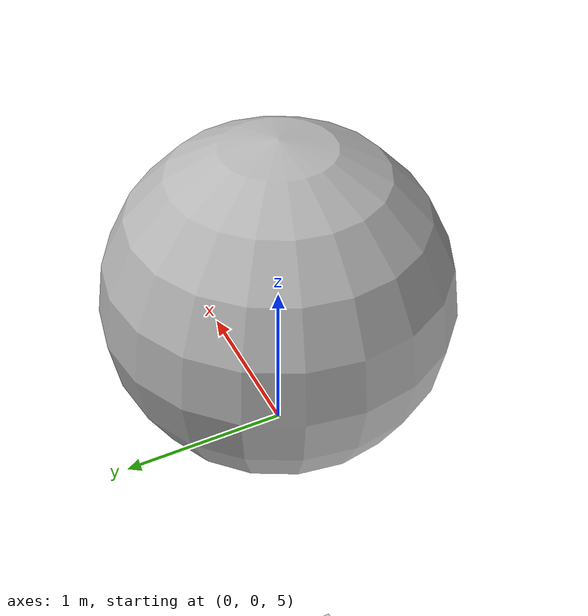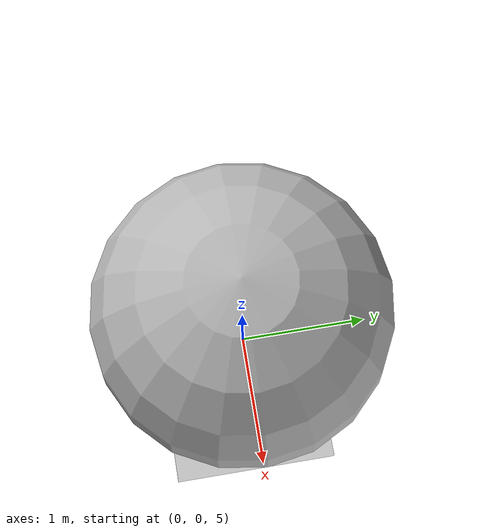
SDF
<?xml version="1.0" ?>
<!--
  Ignition Gazebo move3d plugin demo

  Try sending commands:

    ign topic -t "/model/sphere/linear_vel" -m ignition.msgs.Vector3d -p "x: 1.0"
-->
<sdf version="1.6">
  <world name="move3d">
    <plugin
      filename="libignition-gazebo-physics-system.so"
      name="ignition::gazebo::systems::v0::Physics">
    </plugin>
    <plugin
      filename="libignition-gazebo-systems.so"
      name="ignition::gazebo::systems::v0::SceneBroadcaster">
    </plugin>

    <gui fullscreen="0">

      <!-- 3D scene -->
      <plugin filename="Scene3D" name="3D View">
        <ignition-gui>
          <title>3D View</title>
          <property type="bool" key="showTitleBar">false</property>
          <property type="string" key="state">docked</property>
        </ignition-gui>

        <engine>ogre2</engine>
        <scene>scene</scene>
        <ambient_light>0.4 0.4 0.4</ambient_light>
        <background_color>0.8 0.8 0.8</background_color>
        <camera_pose>-6 0 6 0 0.5 0</camera_pose>
        <service>/world/move3d/scene/info</service>
        <pose_topic>/world/move3d/pose/info</pose_topic>
      </plugin>

      <!-- World control -->
      <plugin filename="WorldControl" name="World control">
        <ignition-gui>
          <title>World control</title>
          <property type="bool" key="showTitleBar">false</property>
          <property type="bool" key="resizable">false</property>
          <property type="double" key="height">72</property>
          <property type="double" key="width">121</property>
          <property type="double" key="z">1</property>

          <property type="string" key="state">floating</property>
          <anchors target="3D View">
            <line own="left" target="left"/>
            <line own="bottom" target="bottom"/>
          </anchors>
        </ignition-gui>

        <play_pause>true</play_pause>
        <step>true</step>
        <start_paused>true</start_paused>
        <service>/world/move3d/control</service>
        <stats_topic>/world/move3d/stats</stats_topic>

      </plugin>

      <!-- World statistics -->
      <plugin filename="WorldStats" name="World stats">
        <ignition-gui>
          <title>World stats</title>
          <property type="bool" key="showTitleBar">false</property>
          <property type="bool" key="resizable">false</property>
          <property type="double" key="height">110</property>
          <property type="double" key="width">290</property>
          <property type="double" key="z">1</property>

          <property type="string" key="state">floating</property>
          <anchors target="3D View">
            <line own="right" target="right"/>
            <line own="bottom" target="bottom"/>
          </anchors>
        </ignition-gui>

        <sim_time>true</sim_time>
        <real_time>true</real_time>
        <real_time_factor>true</real_time_factor>
        <iterations>true</iterations>
        <topic>/world/move3d/stats</topic>

      </plugin>

    </gui>

    <light type="directional" name="sun">
      <cast_shadows>true</cast_shadows>
      <pose>0 0 10 0 0 0</pose>
      <diffuse>1 1 1 1</diffuse>
      <specular>0.5 0.5 0.5 1</specular>
      <attenuation>
        <range>1000</range>
        <constant>0.9</constant>
        <linear>0.01</linear>
        <quadratic>0.001</quadratic>
      </attenuation>
      <direction>-0.5 0.1 -0.9</direction>
    </light>

    <model name="ground_plane">
      <static>true</static>
      <link name="link">
        <collision name="collision">
          <geometry>
            <plane>
              <normal>0 0 1</normal>
            </plane>
          </geometry>
        </collision>
        <visual name="visual">
          <geometry>
            <plane>
              <normal>0 0 1</normal>
              <size>100 100</size>
            </plane>
          </geometry>
          <material>
            <ambient>0.8 0.8 0.8 1</ambient>
            <diffuse>0.8 0.8 0.8 1</diffuse>
            <specular>0.8 0.8 0.8 1</specular>
            <emissive>0.8 0.8 0.8 1</emissive>
          </material>
        </visual>
      </link>
    </model>

    <model name="sphere">
      <pose>0 0 1 0 0 0</pose>
      <link name="sphere_link">
        <pose>0.0 0.0 5.0 0 0 0</pose>
        <inertial>
          <inertia>
            <ixx>0.4</ixx>
            <ixy>0</ixy>
            <ixz>0</ixz>
            <iyy>0.4</iyy>
            <iyz>0</iyz>
            <izz>0.4</izz>
          </inertia>
          <mass>1.0</mass>
        </inertial>
        <visual name="sphere_visual">
          <geometry>
            <sphere>
              <radius>1</radius>
            </sphere>
          </geometry>
        </visual>
        <collision name="sphere_collision">
          <geometry>
            <sphere>
              <radius>1</radius>
            </sphere>
          </geometry>
        </collision>
      </link>
      <plugin
        filename="libignition-gazebo-systems.so"
        name="ignition::gazebo::systems::v0::Move3d">
      </plugin>
    </model>
  </world>
</sdf>
